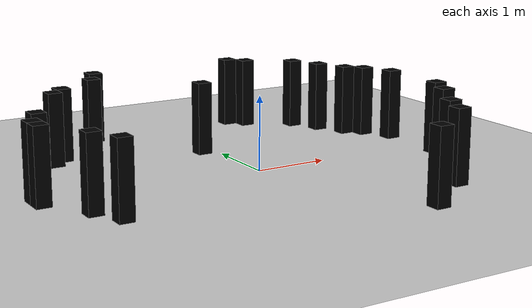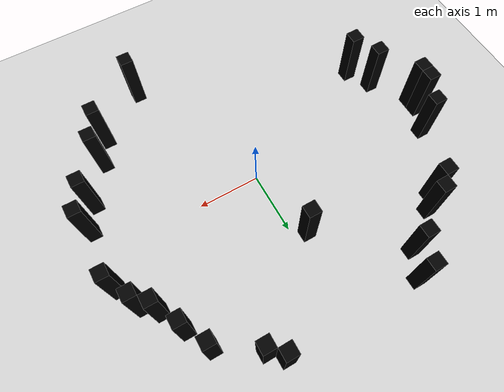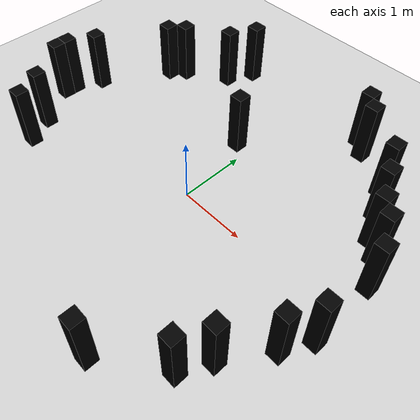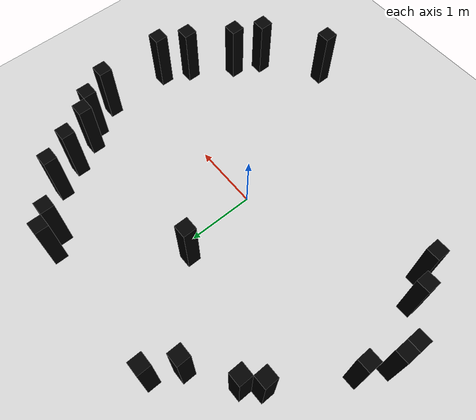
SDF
<?xml version="1.0" ?>
<sdf version="1.6">
  <world name="map_world">
    <include>
      <uri>model://ground_plane</uri>
    </include>
    <model name="obs_176_132">
      <static>true</static>
      <link name="link">
        <collision name="collision">
          <geometry>
            <box><size>0.2 0.2 1.0</size></box>
          </geometry>
        </collision>
        <visual name="visual">
          <geometry>
            <box><size>0.2 0.2 1.0</size></box>
          </geometry>
          <material>
            <ambient>0 0 0 1</ambient>
          </material>
        </visual>
        <pose>-1.1999999999999993 2.6000000000000014 0.5 0 0 0</pose>
      </link>
    </model>
    <model name="obs_220_132">
      <static>true</static>
      <link name="link">
        <collision name="collision">
          <geometry>
            <box><size>0.2 0.2 1.0</size></box>
          </geometry>
        </collision>
        <visual name="visual">
          <geometry>
            <box><size>0.2 0.2 1.0</size></box>
          </geometry>
          <material>
            <ambient>0 0 0 1</ambient>
          </material>
        </visual>
        <pose>1.0 2.6000000000000014 0.5 0 0 0</pose>
      </link>
    </model>
    <model name="obs_224_136">
      <static>true</static>
      <link name="link">
        <collision name="collision">
          <geometry>
            <box><size>0.2 0.2 1.0</size></box>
          </geometry>
        </collision>
        <visual name="visual">
          <geometry>
            <box><size>0.2 0.2 1.0</size></box>
          </geometry>
          <material>
            <ambient>0 0 0 1</ambient>
          </material>
        </visual>
        <pose>1.200000000000001 2.4000000000000004 0.5 0 0 0</pose>
      </link>
    </model>
    <model name="obs_172_140">
      <static>true</static>
      <link name="link">
        <collision name="collision">
          <geometry>
            <box><size>0.2 0.2 1.0</size></box>
          </geometry>
        </collision>
        <visual name="visual">
          <geometry>
            <box><size>0.2 0.2 1.0</size></box>
          </geometry>
          <material>
            <ambient>0 0 0 1</ambient>
          </material>
        </visual>
        <pose>-1.4000000000000004 2.200000000000001 0.5 0 0 0</pose>
      </link>
    </model>
    <model name="obs_236_144">
      <static>true</static>
      <link name="link">
        <collision name="collision">
          <geometry>
            <box><size>0.2 0.2 1.0</size></box>
          </geometry>
        </collision>
        <visual name="visual">
          <geometry>
            <box><size>0.2 0.2 1.0</size></box>
          </geometry>
          <material>
            <ambient>0 0 0 1</ambient>
          </material>
        </visual>
        <pose>1.8000000000000007 2.0 0.5 0 0 0</pose>
      </link>
    </model>
    <model name="obs_160_148">
      <static>true</static>
      <link name="link">
        <collision name="collision">
          <geometry>
            <box><size>0.2 0.2 1.0</size></box>
          </geometry>
        </collision>
        <visual name="visual">
          <geometry>
            <box><size>0.2 0.2 1.0</size></box>
          </geometry>
          <material>
            <ambient>0 0 0 1</ambient>
          </material>
        </visual>
        <pose>-2.0 1.8000000000000007 0.5 0 0 0</pose>
      </link>
    </model>
    <model name="obs_156_152">
      <static>true</static>
      <link name="link">
        <collision name="collision">
          <geometry>
            <box><size>0.2 0.2 1.0</size></box>
          </geometry>
        </collision>
        <visual name="visual">
          <geometry>
            <box><size>0.2 0.2 1.0</size></box>
          </geometry>
          <material>
            <ambient>0 0 0 1</ambient>
          </material>
        </visual>
        <pose>-2.1999999999999993 1.6000000000000014 0.5 0 0 0</pose>
      </link>
    </model>
    <model name="obs_240_152">
      <static>true</static>
      <link name="link">
        <collision name="collision">
          <geometry>
            <box><size>0.2 0.2 1.0</size></box>
          </geometry>
        </collision>
        <visual name="visual">
          <geometry>
            <box><size>0.2 0.2 1.0</size></box>
          </geometry>
          <material>
            <ambient>0 0 0 1</ambient>
          </material>
        </visual>
        <pose>2.0 1.6000000000000014 0.5 0 0 0</pose>
      </link>
    </model>
    <model name="obs_196_160">
      <static>true</static>
      <link name="link">
        <collision name="collision">
          <geometry>
            <box><size>0.2 0.2 1.0</size></box>
          </geometry>
        </collision>
        <visual name="visual">
          <geometry>
            <box><size>0.2 0.2 1.0</size></box>
          </geometry>
          <material>
            <ambient>0 0 0 1</ambient>
          </material>
        </visual>
        <pose>-0.1999999999999993 1.200000000000001 0.5 0 0 0</pose>
      </link>
    </model>
    <model name="obs_244_160">
      <static>true</static>
      <link name="link">
        <collision name="collision">
          <geometry>
            <box><size>0.2 0.2 1.0</size></box>
          </geometry>
        </collision>
        <visual name="visual">
          <geometry>
            <box><size>0.2 0.2 1.0</size></box>
          </geometry>
          <material>
            <ambient>0 0 0 1</ambient>
          </material>
        </visual>
        <pose>2.200000000000001 1.200000000000001 0.5 0 0 0</pose>
      </link>
    </model>
    <model name="obs_248_164">
      <static>true</static>
      <link name="link">
        <collision name="collision">
          <geometry>
            <box><size>0.2 0.2 1.0</size></box>
          </geometry>
        </collision>
        <visual name="visual">
          <geometry>
            <box><size>0.2 0.2 1.0</size></box>
          </geometry>
          <material>
            <ambient>0 0 0 1</ambient>
          </material>
        </visual>
        <pose>2.4000000000000004 1.0 0.5 0 0 0</pose>
      </link>
    </model>
    <model name="obs_144_172">
      <static>true</static>
      <link name="link">
        <collision name="collision">
          <geometry>
            <box><size>0.2 0.2 1.0</size></box>
          </geometry>
        </collision>
        <visual name="visual">
          <geometry>
            <box><size>0.2 0.2 1.0</size></box>
          </geometry>
          <material>
            <ambient>0 0 0 1</ambient>
          </material>
        </visual>
        <pose>-2.8 0.6000000000000014 0.5 0 0 0</pose>
      </link>
    </model>
    <model name="obs_252_172">
      <static>true</static>
      <link name="link">
        <collision name="collision">
          <geometry>
            <box><size>0.2 0.2 1.0</size></box>
          </geometry>
        </collision>
        <visual name="visual">
          <geometry>
            <box><size>0.2 0.2 1.0</size></box>
          </geometry>
          <material>
            <ambient>0 0 0 1</ambient>
          </material>
        </visual>
        <pose>2.6000000000000014 0.6000000000000014 0.5 0 0 0</pose>
      </link>
    </model>
    <model name="obs_140_180">
      <static>true</static>
      <link name="link">
        <collision name="collision">
          <geometry>
            <box><size>0.2 0.2 1.0</size></box>
          </geometry>
        </collision>
        <visual name="visual">
          <geometry>
            <box><size>0.2 0.2 1.0</size></box>
          </geometry>
          <material>
            <ambient>0 0 0 1</ambient>
          </material>
        </visual>
        <pose>-3.0 0.20000000000000107 0.5 0 0 0</pose>
      </link>
    </model>
    <model name="obs_140_184">
      <static>true</static>
      <link name="link">
        <collision name="collision">
          <geometry>
            <box><size>0.2 0.2 1.0</size></box>
          </geometry>
        </collision>
        <visual name="visual">
          <geometry>
            <box><size>0.2 0.2 1.0</size></box>
          </geometry>
          <material>
            <ambient>0 0 0 1</ambient>
          </material>
        </visual>
        <pose>-3.0 0.0 0.5 0 0 0</pose>
      </link>
    </model>
    <model name="obs_252_192">
      <static>true</static>
      <link name="link">
        <collision name="collision">
          <geometry>
            <box><size>0.2 0.2 1.0</size></box>
          </geometry>
        </collision>
        <visual name="visual">
          <geometry>
            <box><size>0.2 0.2 1.0</size></box>
          </geometry>
          <material>
            <ambient>0 0 0 1</ambient>
          </material>
        </visual>
        <pose>2.6000000000000014 -0.3999999999999986 0.5 0 0 0</pose>
      </link>
    </model>
    <model name="obs_148_196">
      <static>true</static>
      <link name="link">
        <collision name="collision">
          <geometry>
            <box><size>0.2 0.2 1.0</size></box>
          </geometry>
        </collision>
        <visual name="visual">
          <geometry>
            <box><size>0.2 0.2 1.0</size></box>
          </geometry>
          <material>
            <ambient>0 0 0 1</ambient>
          </material>
        </visual>
        <pose>-2.5999999999999996 -0.5999999999999996 0.5 0 0 0</pose>
      </link>
    </model>
    <model name="obs_248_200">
      <static>true</static>
      <link name="link">
        <collision name="collision">
          <geometry>
            <box><size>0.2 0.2 1.0</size></box>
          </geometry>
        </collision>
        <visual name="visual">
          <geometry>
            <box><size>0.2 0.2 1.0</size></box>
          </geometry>
          <material>
            <ambient>0 0 0 1</ambient>
          </material>
        </visual>
        <pose>2.4000000000000004 -0.7999999999999989 0.5 0 0 0</pose>
      </link>
    </model>
    <model name="obs_152_204">
      <static>true</static>
      <link name="link">
        <collision name="collision">
          <geometry>
            <box><size>0.2 0.2 1.0</size></box>
          </geometry>
        </collision>
        <visual name="visual">
          <geometry>
            <box><size>0.2 0.2 1.0</size></box>
          </geometry>
          <material>
            <ambient>0 0 0 1</ambient>
          </material>
        </visual>
        <pose>-2.3999999999999995 -1.0 0.5 0 0 0</pose>
      </link>
    </model>
    <model name="obs_240_212">
      <static>true</static>
      <link name="link">
        <collision name="collision">
          <geometry>
            <box><size>0.2 0.2 1.0</size></box>
          </geometry>
        </collision>
        <visual name="visual">
          <geometry>
            <box><size>0.2 0.2 1.0</size></box>
          </geometry>
          <material>
            <ambient>0 0 0 1</ambient>
          </material>
        </visual>
        <pose>2.0 -1.4000000000000004 0.5 0 0 0</pose>
      </link>
    </model>
    <model name="obs_236_220">
      <static>true</static>
      <link name="link">
        <collision name="collision">
          <geometry>
            <box><size>0.2 0.2 1.0</size></box>
          </geometry>
        </collision>
        <visual name="visual">
          <geometry>
            <box><size>0.2 0.2 1.0</size></box>
          </geometry>
          <material>
            <ambient>0 0 0 1</ambient>
          </material>
        </visual>
        <pose>1.8000000000000007 -1.799999999999999 0.5 0 0 0</pose>
      </link>
    </model>
    <model name="obs_220_232">
      <static>true</static>
      <link name="link">
        <collision name="collision">
          <geometry>
            <box><size>0.2 0.2 1.0</size></box>
          </geometry>
        </collision>
        <visual name="visual">
          <geometry>
            <box><size>0.2 0.2 1.0</size></box>
          </geometry>
          <material>
            <ambient>0 0 0 1</ambient>
          </material>
        </visual>
        <pose>1.0 -2.3999999999999995 0.5 0 0 0</pose>
      </link>
    </model>
  </world>
</sdf>
